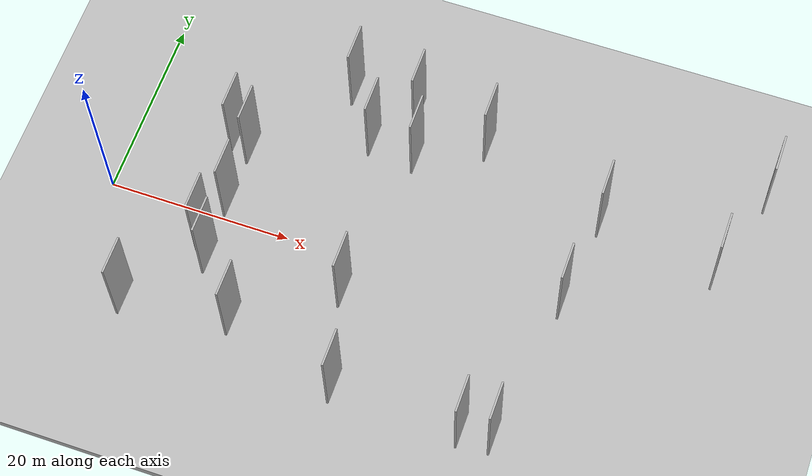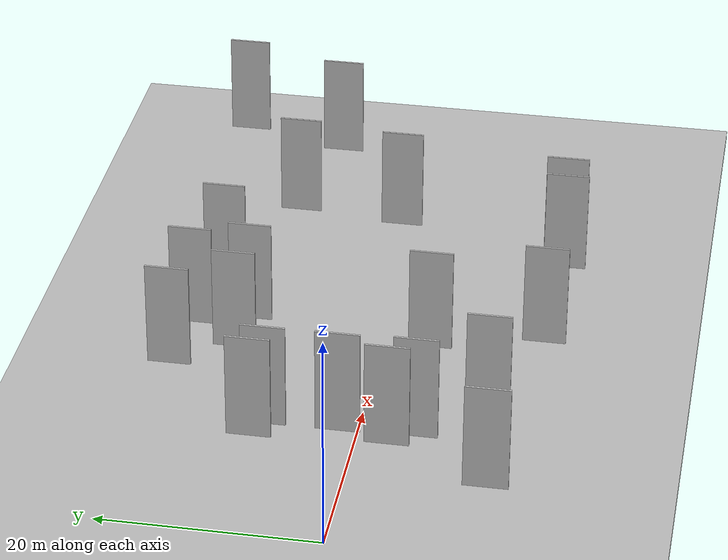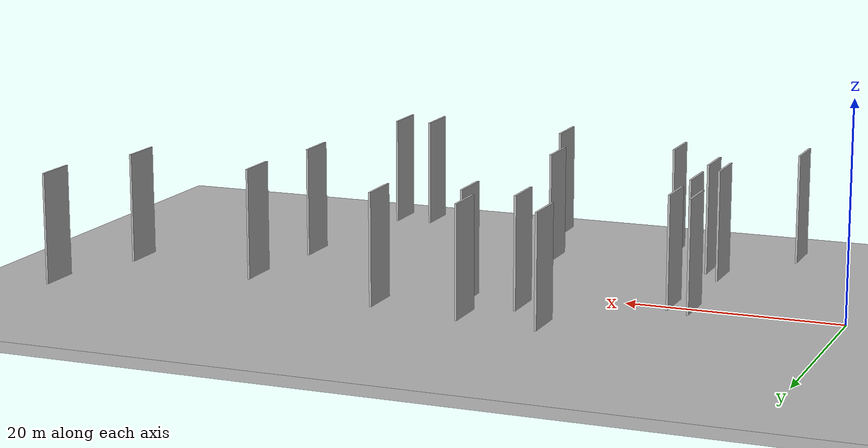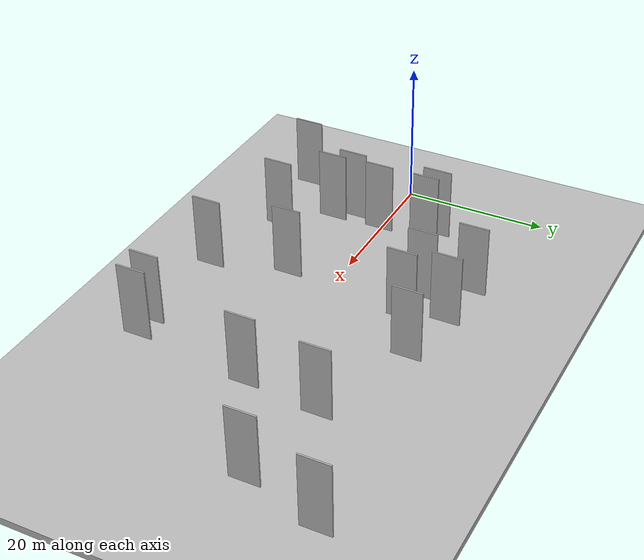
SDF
<?xml version="1.0" encoding="utf-8"?>

<sdf version="1.6">

   <world name="default">

      <gui fullscreen="0">

         <camera name="user_camera">

            <pose>-15 0 4.57585 0 0 0</pose>

            <view_controller>orbit</view_controller>

         </camera>

      </gui>

      <scene>

         <sky>

           <clouds>

             <speed>12</speed>

           </clouds>

         </sky>

         <ambient>0.4 0.4 0.4 1</ambient>

         <background>0.7 0.7 0.7 1</background>

         <shadows>1</shadows>

      </scene>

      <gravity>0 0 -9.8066</gravity>

      <magnetic_field>6e-06 2.3e-05 -4.2e-05</magnetic_field>

      <physics default="0" name="default_physics" type="ode">

         <ode>

            <solver>

               <type>quick</type>

               <iters>10</iters>

               <sor>1.0</sor>

               <use_dynamic_moi_rescaling>0</use_dynamic_moi_rescaling>

            </solver>

            <constraints>

               <cfm>0</cfm>

               <erp>0.2</erp>

               <contact_max_correcting_vel>100</contact_max_correcting_vel>

               <contact_surface_layer>0.001</contact_surface_layer>

            </constraints>

         </ode>

         <max_step_size>0.004</max_step_size>

         <real_time_factor>1</real_time_factor>

         <real_time_update_rate>250</real_time_update_rate>

      </physics>

      <light name="sun" type="directional">

         <cast_shadows>1</cast_shadows>

         <pose>0 0 10 0 0 0</pose>

         <diffuse>0.8 0.8 0.8 1</diffuse>

         <specular>0.2 0.2 0.2 1</specular>

         <attenuation>

            <range>1000</range>

            <constant>0.9</constant>

            <linear>0.01</linear>

            <quadratic>0.001</quadratic>

         </attenuation>

         <direction>-0.5 0.1 -0.9</direction>

      </light>

      <include>

         <name>ground_plane_1</name>

         <uri>model://HANNAS_ground_plane</uri>

         <pose>0 0 0  0 0 0</pose>

      </include>

      <include>

         <name>ground_plane_2</name>

         <uri>model://HANNAS_ground_plane</uri>

         <pose>100 0 0  0 0 0</pose>

      </include>

      <model name="HANNAS_wall_1">

         <static>1</static>

         <pose frame="">13.3032 7.7961 2.5 0.000000 0.000000 1.570796</pose>

         <link name="link">

            <pose frame="">0 0 5.00 0 0 0</pose>

            <collision name="collision">

               <geometry>

                  <box>

                     <size>4.00 0.2 10.00</size>

                  </box>

               </geometry>

               <max_contacts>10</max_contacts>

               <surface>

                  <contact>

                     <ode/>

                  </contact>

                  <bounce/>

                  <friction>

                     <torsional>

                        <ode/>

                     </torsional>

                     <ode/>

                  </friction>

               </surface>

            </collision>

            <visual name="visual">

               <cast_shadows>0</cast_shadows>

               <geometry>

                  <box>

                     <size>4.00 0.2 10.00</size>

                  </box>

               </geometry>

               <material>

                  <script>

                     <uri>model://HANNAS_wall/materials/scripts</uri>

                     <uri>model://HANNAS_wall/materials/textures</uri>

                     <name>vrc/HANNAS_wall</name>

                  </script>

               </material>

            </visual>

            <self_collide>0</self_collide>

            <enable_wind>0</enable_wind>

            <kinematic>0</kinematic>

         </link>

      </model>

      <model name="HANNAS_wall_2">

         <static>1</static>

         <pose frame="">11.2306 8.7210 2.5 0.000000 0.000000 1.570796</pose>

         <link name="link">

            <pose frame="">0 0 5.00 0 0 0</pose>

            <collision name="collision">

               <geometry>

                  <box>

                     <size>4.00 0.2 10.00</size>

                  </box>

               </geometry>

               <max_contacts>10</max_contacts>

               <surface>

                  <contact>

                     <ode/>

                  </contact>

                  <bounce/>

                  <friction>

                     <torsional>

                        <ode/>

                     </torsional>

                     <ode/>

                  </friction>

               </surface>

            </collision>

            <visual name="visual">

               <cast_shadows>0</cast_shadows>

               <geometry>

                  <box>

                     <size>4.00 0.2 10.00</size>

                  </box>

               </geometry>

               <material>

                  <script>

                     <uri>model://HANNAS_wall/materials/scripts</uri>

                     <uri>model://HANNAS_wall/materials/textures</uri>

                     <name>vrc/HANNAS_wall</name>

                  </script>

               </material>

            </visual>

            <self_collide>0</self_collide>

            <enable_wind>0</enable_wind>

            <kinematic>0</kinematic>

         </link>

      </model>

      <model name="HANNAS_wall_3">

         <static>1</static>

         <pose frame="">63.8334 9.5449 2.5 0.000000 0.000000 1.570796</pose>

         <link name="link">

            <pose frame="">0 0 5.00 0 0 0</pose>

            <collision name="collision">

               <geometry>

                  <box>

                     <size>4.00 0.2 10.00</size>

                  </box>

               </geometry>

               <max_contacts>10</max_contacts>

               <surface>

                  <contact>

                     <ode/>

                  </contact>

                  <bounce/>

                  <friction>

                     <torsional>

                        <ode/>

                     </torsional>

                     <ode/>

                  </friction>

               </surface>

            </collision>

            <visual name="visual">

               <cast_shadows>0</cast_shadows>

               <geometry>

                  <box>

                     <size>4.00 0.2 10.00</size>

                  </box>

               </geometry>

               <material>

                  <script>

                     <uri>model://HANNAS_wall/materials/scripts</uri>

                     <uri>model://HANNAS_wall/materials/textures</uri>

                     <name>vrc/HANNAS_wall</name>

                  </script>

               </material>

            </visual>

            <self_collide>0</self_collide>

            <enable_wind>0</enable_wind>

            <kinematic>0</kinematic>

         </link>

      </model>

      <model name="HANNAS_wall_4">

         <static>1</static>

         <pose frame="">18.5532 -11.3464 2.5 0.000000 0.000000 1.570796</pose>

         <link name="link">

            <pose frame="">0 0 5.00 0 0 0</pose>

            <collision name="collision">

               <geometry>

                  <box>

                     <size>4.00 0.2 10.00</size>

                  </box>

               </geometry>

               <max_contacts>10</max_contacts>

               <surface>

                  <contact>

                     <ode/>

                  </contact>

                  <bounce/>

                  <friction>

                     <torsional>

                        <ode/>

                     </torsional>

                     <ode/>

                  </friction>

               </surface>

            </collision>

            <visual name="visual">

               <cast_shadows>0</cast_shadows>

               <geometry>

                  <box>

                     <size>4.00 0.2 10.00</size>

                  </box>

               </geometry>

               <material>

                  <script>

                     <uri>model://HANNAS_wall/materials/scripts</uri>

                     <uri>model://HANNAS_wall/materials/textures</uri>

                     <name>vrc/HANNAS_wall</name>

                  </script>

               </material>

            </visual>

            <self_collide>0</self_collide>

            <enable_wind>0</enable_wind>

            <kinematic>0</kinematic>

         </link>

      </model>

      <model name="HANNAS_wall_5">

         <static>1</static>

         <pose frame="">51.0080 11.5029 2.5 0.000000 0.000000 1.570796</pose>

         <link name="link">

            <pose frame="">0 0 5.00 0 0 0</pose>

            <collision name="collision">

               <geometry>

                  <box>

                     <size>4.00 0.2 10.00</size>

                  </box>

               </geometry>

               <max_contacts>10</max_contacts>

               <surface>

                  <contact>

                     <ode/>

                  </contact>

                  <bounce/>

                  <friction>

                     <torsional>

                        <ode/>

                     </torsional>

                     <ode/>

                  </friction>

               </surface>

            </collision>

            <visual name="visual">

               <cast_shadows>0</cast_shadows>

               <geometry>

                  <box>

                     <size>4.00 0.2 10.00</size>

                  </box>

               </geometry>

               <material>

                  <script>

                     <uri>model://HANNAS_wall/materials/scripts</uri>

                     <uri>model://HANNAS_wall/materials/textures</uri>

                     <name>vrc/HANNAS_wall</name>

                  </script>

               </material>

            </visual>

            <self_collide>0</self_collide>

            <enable_wind>0</enable_wind>

            <kinematic>0</kinematic>

         </link>

      </model>

      <model name="HANNAS_wall_6">

         <static>1</static>

         <pose frame="">30.2593 12.3829 2.5 0.000000 0.000000 1.570796</pose>

         <link name="link">

            <pose frame="">0 0 5.00 0 0 0</pose>

            <collision name="collision">

               <geometry>

                  <box>

                     <size>4.00 0.2 10.00</size>

                  </box>

               </geometry>

               <max_contacts>10</max_contacts>

               <surface>

                  <contact>

                     <ode/>

                  </contact>

                  <bounce/>

                  <friction>

                     <torsional>

                        <ode/>

                     </torsional>

                     <ode/>

                  </friction>

               </surface>

            </collision>

            <visual name="visual">

               <cast_shadows>0</cast_shadows>

               <geometry>

                  <box>

                     <size>4.00 0.2 10.00</size>

                  </box>

               </geometry>

               <material>

                  <script>

                     <uri>model://HANNAS_wall/materials/scripts</uri>

                     <uri>model://HANNAS_wall/materials/textures</uri>

                     <name>vrc/HANNAS_wall</name>

                  </script>

               </material>

            </visual>

            <self_collide>0</self_collide>

            <enable_wind>0</enable_wind>

            <kinematic>0</kinematic>

         </link>

      </model>

      <model name="HANNAS_wall_7">

         <static>1</static>

         <pose frame="">7.1082 -12.7027 2.5 0.000000 0.000000 1.570796</pose>

         <link name="link">

            <pose frame="">0 0 5.00 0 0 0</pose>

            <collision name="collision">

               <geometry>

                  <box>

                     <size>4.00 0.2 10.00</size>

                  </box>

               </geometry>

               <max_contacts>10</max_contacts>

               <surface>

                  <contact>

                     <ode/>

                  </contact>

                  <bounce/>

                  <friction>

                     <torsional>

                        <ode/>

                     </torsional>

                     <ode/>

                  </friction>

               </surface>

            </collision>

            <visual name="visual">

               <cast_shadows>0</cast_shadows>

               <geometry>

                  <box>

                     <size>4.00 0.2 10.00</size>

                  </box>

               </geometry>

               <material>

                  <script>

                     <uri>model://HANNAS_wall/materials/scripts</uri>

                     <uri>model://HANNAS_wall/materials/textures</uri>

                     <name>vrc/HANNAS_wall</name>

                  </script>

               </material>

            </visual>

            <self_collide>0</self_collide>

            <enable_wind>0</enable_wind>

            <kinematic>0</kinematic>

         </link>

      </model>

      <model name="HANNAS_wall_8">

         <static>1</static>

         <pose frame="">21.4354 18.1514 2.5 0.000000 0.000000 1.570796</pose>

         <link name="link">

            <pose frame="">0 0 5.00 0 0 0</pose>

            <collision name="collision">

               <geometry>

                  <box>

                     <size>4.00 0.2 10.00</size>

                  </box>

               </geometry>

               <max_contacts>10</max_contacts>

               <surface>

                  <contact>

                     <ode/>

                  </contact>

                  <bounce/>

                  <friction>

                     <torsional>

                        <ode/>

                     </torsional>

                     <ode/>

                  </friction>

               </surface>

            </collision>

            <visual name="visual">

               <cast_shadows>0</cast_shadows>

               <geometry>

                  <box>

                     <size>4.00 0.2 10.00</size>

                  </box>

               </geometry>

               <material>

                  <script>

                     <uri>model://HANNAS_wall/materials/scripts</uri>

                     <uri>model://HANNAS_wall/materials/textures</uri>

                     <name>vrc/HANNAS_wall</name>

                  </script>

               </material>

            </visual>

            <self_collide>0</self_collide>

            <enable_wind>0</enable_wind>

            <kinematic>0</kinematic>

         </link>

      </model>

      <model name="HANNAS_wall_9">

         <static>1</static>

         <pose frame="">13.6842 -5.6395 2.5 0.000000 0.000000 1.570796</pose>

         <link name="link">

            <pose frame="">0 0 5.00 0 0 0</pose>

            <collision name="collision">

               <geometry>

                  <box>

                     <size>4.00 0.2 10.00</size>

                  </box>

               </geometry>

               <max_contacts>10</max_contacts>

               <surface>

                  <contact>

                     <ode/>

                  </contact>

                  <bounce/>

                  <friction>

                     <torsional>

                        <ode/>

                     </torsional>

                     <ode/>

                  </friction>

               </surface>

            </collision>

            <visual name="visual">

               <cast_shadows>0</cast_shadows>

               <geometry>

                  <box>

                     <size>4.00 0.2 10.00</size>

                  </box>

               </geometry>

               <material>

                  <script>

                     <uri>model://HANNAS_wall/materials/scripts</uri>

                     <uri>model://HANNAS_wall/materials/textures</uri>

                     <name>vrc/HANNAS_wall</name>

                  </script>

               </material>

            </visual>

            <self_collide>0</self_collide>

            <enable_wind>0</enable_wind>

            <kinematic>0</kinematic>

         </link>

      </model>

      <model name="HANNAS_wall_10">

         <static>1</static>

         <pose frame="">25.2062 12.8764 2.5 0.000000 0.000000 1.570796</pose>

         <link name="link">

            <pose frame="">0 0 5.00 0 0 0</pose>

            <collision name="collision">

               <geometry>

                  <box>

                     <size>4.00 0.2 10.00</size>

                  </box>

               </geometry>

               <max_contacts>10</max_contacts>

               <surface>

                  <contact>

                     <ode/>

                  </contact>

                  <bounce/>

                  <friction>

                     <torsional>

                        <ode/>

                     </torsional>

                     <ode/>

                  </friction>

               </surface>

            </collision>

            <visual name="visual">

               <cast_shadows>0</cast_shadows>

               <geometry>

                  <box>

                     <size>4.00 0.2 10.00</size>

                  </box>

               </geometry>

               <material>

                  <script>

                     <uri>model://HANNAS_wall/materials/scripts</uri>

                     <uri>model://HANNAS_wall/materials/textures</uri>

                     <name>vrc/HANNAS_wall</name>

                  </script>

               </material>

            </visual>

            <self_collide>0</self_collide>

            <enable_wind>0</enable_wind>

            <kinematic>0</kinematic>

         </link>

      </model>

      <model name="HANNAS_wall_11">

         <static>1</static>

         <pose frame="">13.3666 1.2053 2.5 0.000000 0.000000 1.570796</pose>

         <link name="link">

            <pose frame="">0 0 5.00 0 0 0</pose>

            <collision name="collision">

               <geometry>

                  <box>

                     <size>4.00 0.2 10.00</size>

                  </box>

               </geometry>

               <max_contacts>10</max_contacts>

               <surface>

                  <contact>

                     <ode/>

                  </contact>

                  <bounce/>

                  <friction>

                     <torsional>

                        <ode/>

                     </torsional>

                     <ode/>

                  </friction>

               </surface>

            </collision>

            <visual name="visual">

               <cast_shadows>0</cast_shadows>

               <geometry>

                  <box>

                     <size>4.00 0.2 10.00</size>

                  </box>

               </geometry>

               <material>

                  <script>

                     <uri>model://HANNAS_wall/materials/scripts</uri>

                     <uri>model://HANNAS_wall/materials/textures</uri>

                     <name>vrc/HANNAS_wall</name>

                  </script>

               </material>

            </visual>

            <self_collide>0</self_collide>

            <enable_wind>0</enable_wind>

            <kinematic>0</kinematic>

         </link>

      </model>

      <model name="HANNAS_wall_12">

         <static>1</static>

         <pose frame="">28.6736 17.6413 2.5 0.000000 0.000000 1.570796</pose>

         <link name="link">

            <pose frame="">0 0 5.00 0 0 0</pose>

            <collision name="collision">

               <geometry>

                  <box>

                     <size>4.00 0.2 10.00</size>

                  </box>

               </geometry>

               <max_contacts>10</max_contacts>

               <surface>

                  <contact>

                     <ode/>

                  </contact>

                  <bounce/>

                  <friction>

                     <torsional>

                        <ode/>

                     </torsional>

                     <ode/>

                  </friction>

               </surface>

            </collision>

            <visual name="visual">

               <cast_shadows>0</cast_shadows>

               <geometry>

                  <box>

                     <size>4.00 0.2 10.00</size>

                  </box>

               </geometry>

               <material>

                  <script>

                     <uri>model://HANNAS_wall/materials/scripts</uri>

                     <uri>model://HANNAS_wall/materials/textures</uri>

                     <name>vrc/HANNAS_wall</name>

                  </script>

               </material>

            </visual>

            <self_collide>0</self_collide>

            <enable_wind>0</enable_wind>

            <kinematic>0</kinematic>

         </link>

      </model>

      <model name="HANNAS_wall_13">

         <static>1</static>

         <pose frame="">66.7551 19.7729 2.5 0.000000 0.000000 1.570796</pose>

         <link name="link">

            <pose frame="">0 0 5.00 0 0 0</pose>

            <collision name="collision">

               <geometry>

                  <box>

                     <size>4.00 0.2 10.00</size>

                  </box>

               </geometry>

               <max_contacts>10</max_contacts>

               <surface>

                  <contact>

                     <ode/>

                  </contact>

                  <bounce/>

                  <friction>

                     <torsional>

                        <ode/>

                     </torsional>

                     <ode/>

                  </friction>

               </surface>

            </collision>

            <visual name="visual">

               <cast_shadows>0</cast_shadows>

               <geometry>

                  <box>

                     <size>4.00 0.2 10.00</size>

                  </box>

               </geometry>

               <material>

                  <script>

                     <uri>model://HANNAS_wall/materials/scripts</uri>

                     <uri>model://HANNAS_wall/materials/textures</uri>

                     <name>vrc/HANNAS_wall</name>

                  </script>

               </material>

            </visual>

            <self_collide>0</self_collide>

            <enable_wind>0</enable_wind>

            <kinematic>0</kinematic>

         </link>

      </model>

      <model name="HANNAS_wall_14">

         <static>1</static>

         <pose frame="">28.2685 -4.7588 2.5 0.000000 0.000000 1.570796</pose>

         <link name="link">

            <pose frame="">0 0 5.00 0 0 0</pose>

            <collision name="collision">

               <geometry>

                  <box>

                     <size>4.00 0.2 10.00</size>

                  </box>

               </geometry>

               <max_contacts>10</max_contacts>

               <surface>

                  <contact>

                     <ode/>

                  </contact>

                  <bounce/>

                  <friction>

                     <torsional>

                        <ode/>

                     </torsional>

                     <ode/>

                  </friction>

               </surface>

            </collision>

            <visual name="visual">

               <cast_shadows>0</cast_shadows>

               <geometry>

                  <box>

                     <size>4.00 0.2 10.00</size>

                  </box>

               </geometry>

               <material>

                  <script>

                     <uri>model://HANNAS_wall/materials/scripts</uri>

                     <uri>model://HANNAS_wall/materials/textures</uri>

                     <name>vrc/HANNAS_wall</name>

                  </script>

               </material>

            </visual>

            <self_collide>0</self_collide>

            <enable_wind>0</enable_wind>

            <kinematic>0</kinematic>

         </link>

      </model>

      <model name="HANNAS_wall_15">

         <static>1</static>

         <pose frame="">47.8489 -14.9635 2.5 0.000000 0.000000 1.570796</pose>

         <link name="link">

            <pose frame="">0 0 5.00 0 0 0</pose>

            <collision name="collision">

               <geometry>

                  <box>

                     <size>4.00 0.2 10.00</size>

                  </box>

               </geometry>

               <max_contacts>10</max_contacts>

               <surface>

                  <contact>

                     <ode/>

                  </contact>

                  <bounce/>

                  <friction>

                     <torsional>

                        <ode/>

                     </torsional>

                     <ode/>

                  </friction>

               </surface>

            </collision>

            <visual name="visual">

               <cast_shadows>0</cast_shadows>

               <geometry>

                  <box>

                     <size>4.00 0.2 10.00</size>

                  </box>

               </geometry>

               <material>

                  <script>

                     <uri>model://HANNAS_wall/materials/scripts</uri>

                     <uri>model://HANNAS_wall/materials/textures</uri>

                     <name>vrc/HANNAS_wall</name>

                  </script>

               </material>

            </visual>

            <self_collide>0</self_collide>

            <enable_wind>0</enable_wind>

            <kinematic>0</kinematic>

         </link>

      </model>

      <model name="HANNAS_wall_16">

         <static>1</static>

         <pose frame="">30.9145 -14.9462 2.5 0.000000 0.000000 1.570796</pose>

         <link name="link">

            <pose frame="">0 0 5.00 0 0 0</pose>

            <collision name="collision">

               <geometry>

                  <box>

                     <size>4.00 0.2 10.00</size>

                  </box>

               </geometry>

               <max_contacts>10</max_contacts>

               <surface>

                  <contact>

                     <ode/>

                  </contact>

                  <bounce/>

                  <friction>

                     <torsional>

                        <ode/>

                     </torsional>

                     <ode/>

                  </friction>

               </surface>

            </collision>

            <visual name="visual">

               <cast_shadows>0</cast_shadows>

               <geometry>

                  <box>

                     <size>4.00 0.2 10.00</size>

                  </box>

               </geometry>

               <material>

                  <script>

                     <uri>model://HANNAS_wall/materials/scripts</uri>

                     <uri>model://HANNAS_wall/materials/textures</uri>

                     <name>vrc/HANNAS_wall</name>

                  </script>

               </material>

            </visual>

            <self_collide>0</self_collide>

            <enable_wind>0</enable_wind>

            <kinematic>0</kinematic>

         </link>

      </model>

      <model name="HANNAS_wall_17">

         <static>1</static>

         <pose frame="">37.0760 16.2253 2.5 0.000000 0.000000 1.570796</pose>

         <link name="link">

            <pose frame="">0 0 5.00 0 0 0</pose>

            <collision name="collision">

               <geometry>

                  <box>

                     <size>4.00 0.2 10.00</size>

                  </box>

               </geometry>

               <max_contacts>10</max_contacts>

               <surface>

                  <contact>

                     <ode/>

                  </contact>

                  <bounce/>

                  <friction>

                     <torsional>

                        <ode/>

                     </torsional>

                     <ode/>

                  </friction>

               </surface>

            </collision>

            <visual name="visual">

               <cast_shadows>0</cast_shadows>

               <geometry>

                  <box>

                     <size>4.00 0.2 10.00</size>

                  </box>

               </geometry>

               <material>

                  <script>

                     <uri>model://HANNAS_wall/materials/scripts</uri>

                     <uri>model://HANNAS_wall/materials/textures</uri>

                     <name>vrc/HANNAS_wall</name>

                  </script>

               </material>

            </visual>

            <self_collide>0</self_collide>

            <enable_wind>0</enable_wind>

            <kinematic>0</kinematic>

         </link>

      </model>

      <model name="HANNAS_wall_18">

         <static>1</static>

         <pose frame="">49.9279 1.2897 2.5 0.000000 0.000000 1.570796</pose>

         <link name="link">

            <pose frame="">0 0 5.00 0 0 0</pose>

            <collision name="collision">

               <geometry>

                  <box>

                     <size>4.00 0.2 10.00</size>

                  </box>

               </geometry>

               <max_contacts>10</max_contacts>

               <surface>

                  <contact>

                     <ode/>

                  </contact>

                  <bounce/>

                  <friction>

                     <torsional>

                        <ode/>

                     </torsional>

                     <ode/>

                  </friction>

               </surface>

            </collision>

            <visual name="visual">

               <cast_shadows>0</cast_shadows>

               <geometry>

                  <box>

                     <size>4.00 0.2 10.00</size>

                  </box>

               </geometry>

               <material>

                  <script>

                     <uri>model://HANNAS_wall/materials/scripts</uri>

                     <uri>model://HANNAS_wall/materials/textures</uri>

                     <name>vrc/HANNAS_wall</name>

                  </script>

               </material>

            </visual>

            <self_collide>0</self_collide>

            <enable_wind>0</enable_wind>

            <kinematic>0</kinematic>

         </link>

      </model>

      <model name="HANNAS_wall_19">

         <static>1</static>

         <pose frame="">44.5378 -15.3018 2.5 0.000000 0.000000 1.570796</pose>

         <link name="link">

            <pose frame="">0 0 5.00 0 0 0</pose>

            <collision name="collision">

               <geometry>

                  <box>

                     <size>4.00 0.2 10.00</size>

                  </box>

               </geometry>

               <max_contacts>10</max_contacts>

               <surface>

                  <contact>

                     <ode/>

                  </contact>

                  <bounce/>

                  <friction>

                     <torsional>

                        <ode/>

                     </torsional>

                     <ode/>

                  </friction>

               </surface>

            </collision>

            <visual name="visual">

               <cast_shadows>0</cast_shadows>

               <geometry>

                  <box>

                     <size>4.00 0.2 10.00</size>

                  </box>

               </geometry>

               <material>

                  <script>

                     <uri>model://HANNAS_wall/materials/scripts</uri>

                     <uri>model://HANNAS_wall/materials/textures</uri>

                     <name>vrc/HANNAS_wall</name>

                  </script>

               </material>

            </visual>

            <self_collide>0</self_collide>

            <enable_wind>0</enable_wind>

            <kinematic>0</kinematic>

         </link>

      </model>

      <model name="HANNAS_wall_20">

         <static>1</static>

         <pose frame="">12.0543 -3.3591 2.5 0.000000 0.000000 1.570796</pose>

         <link name="link">

            <pose frame="">0 0 5.00 0 0 0</pose>

            <collision name="collision">

               <geometry>

                  <box>

                     <size>4.00 0.2 10.00</size>

                  </box>

               </geometry>

               <max_contacts>10</max_contacts>

               <surface>

                  <contact>

                     <ode/>

                  </contact>

                  <bounce/>

                  <friction>

                     <torsional>

                        <ode/>

                     </torsional>

                     <ode/>

                  </friction>

               </surface>

            </collision>

            <visual name="visual">

               <cast_shadows>0</cast_shadows>

               <geometry>

                  <box>

                     <size>4.00 0.2 10.00</size>

                  </box>

               </geometry>

               <material>

                  <script>

                     <uri>model://HANNAS_wall/materials/scripts</uri>

                     <uri>model://HANNAS_wall/materials/textures</uri>

                     <name>vrc/HANNAS_wall</name>

                  </script>

               </material>

            </visual>

            <self_collide>0</self_collide>

            <enable_wind>0</enable_wind>

            <kinematic>0</kinematic>

         </link>

      </model>

   </world>

</sdf>

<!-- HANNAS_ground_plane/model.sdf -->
<sdf version="1.4">
<model name="HANNAS_ground_plane">
  <static>true</static>
    <link name="link">
      <collision name="collision">
        <geometry>
          <plane>
            <normal>0 0 1</normal>
            <size>1000 1000</size>
          </plane>
        </geometry>
        <surface>
          <friction>
            <ode>
              <mu>100</mu>
              <mu2>50</mu2>
            </ode>
          </friction>
        </surface>
      </collision>
      <visual name="visual">
        <cast_shadows>false</cast_shadows>
        <geometry>
          <plane>
            <normal>0 0 1</normal>
            <size>1000 1000</size>
          </plane>
        </geometry>
        <material>
          <script>
            <uri>model://HANNAS_ground_plane/materials/scripts/HANNAS_ground_plane.material</uri>
	    <uri>model://HANNAS_ground_plane/materials/textures</uri>
            <name>HANNASGroundPlane/Image</name>
          </script>
        </material>
      </visual>
    </link>
  </model>
</sdf>
